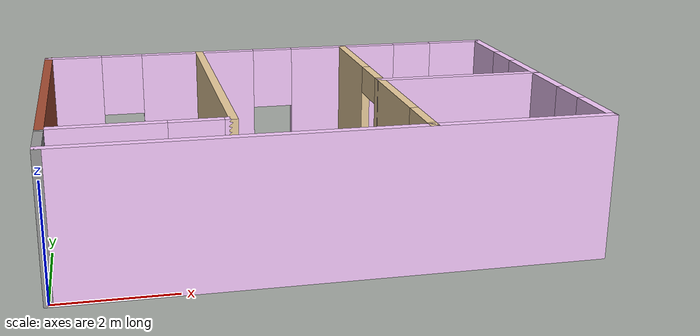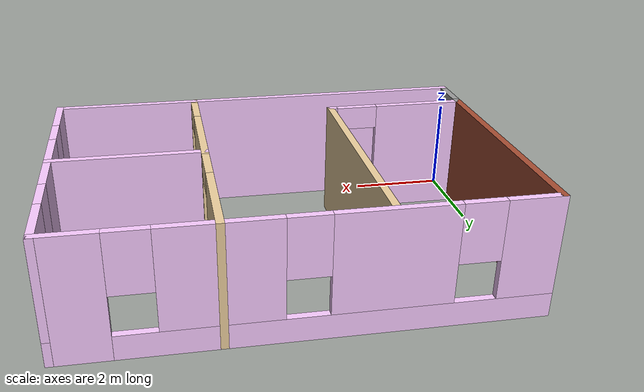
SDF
<?xml version='1.0'?>
<sdf version='1.6'>
  <model name='model'>
    <pose frame=''>4.5 3 0 0 -0 0</pose>
    <link name='Wall_33'>
      <collision name='Wall_33_Collision'>
        <geometry>
          <box>
            <size>5.15 0.15 2.5</size>
          </box>
        </geometry>
        <pose frame=''>0 0 1.25 0 -0 0</pose>
      </collision>
      <visual name='Wall_33_Visual'>
        <pose frame=''>0 0 1.25 0 -0 0</pose>
        <geometry>
          <box>
            <size>5.15 0.15 2.5</size>
          </box>
        </geometry>
        <material>
          <script>
            <uri>file://media/materials/scripts/gazebo.material</uri>
            <name>Gazebo/Bricks</name>
          </script>
          <ambient>0.0509804 0.968627 0.980392 1</ambient>
        </material>
        <meta>
          <layer>0</layer>
        </meta>
      </visual>
      <pose frame=''>-4.5 0.5 0 0 0 -1.5708</pose>
    </link>
    <link name='Wall_37'>
      <collision name='Wall_37_Collision'>
        <geometry>
          <box>
            <size>9.15 0.15 2.5</size>
          </box>
        </geometry>
        <pose frame=''>0 0 1.25 0 -0 0</pose>
      </collision>
      <visual name='Wall_37_Visual'>
        <pose frame=''>0 0 1.25 0 -0 0</pose>
        <geometry>
          <box>
            <size>9.15 0.15 2.5</size>
          </box>
        </geometry>
        <material>
          <script>
            <uri>file://media/materials/scripts/gazebo.material</uri>
            <name>Gazebo/Grey</name>
          </script>
          <ambient>0.972549 0.796078 1 1</ambient>
        </material>
        <meta>
          <layer>0</layer>
        </meta>
      </visual>
      <pose frame=''>0 -3 0 0 -0 3.14159</pose>
    </link>
    <link name='Wall_40'>
      <collision name='Wall_40_Collision'>
        <geometry>
          <box>
            <size>5.15 0.15 2.5</size>
          </box>
        </geometry>
        <pose frame=''>0 0 1.25 0 -0 0</pose>
      </collision>
      <visual name='Wall_40_Visual'>
        <pose frame=''>0 0 1.25 0 -0 0</pose>
        <geometry>
          <box>
            <size>5.15 0.15 2.5</size>
          </box>
        </geometry>
        <material>
          <script>
            <uri>file://media/materials/scripts/gazebo.material</uri>
            <name>Gazebo/Grey</name>
          </script>
          <ambient>0.921569 0.807843 0.615686 1</ambient>
        </material>
        <meta>
          <layer>0</layer>
        </meta>
      </visual>
      <pose frame=''>-1.5 0.5 0 0 -0 1.5708</pose>
    </link>
    <link name='Wall_42'>
      <pose frame=''>1.5 0 0 0 -0 1.5708</pose>
      <visual name='Wall_42_Visual_0'>
        <pose frame=''>-2.97485 0 1.25 0 -0 0</pose>
        <geometry>
          <box>
            <size>0.200301 0.15 2.5</size>
          </box>
        </geometry>
        <material>
          <script>
            <uri>file://media/materials/scripts/gazebo.material</uri>
            <name>Gazebo/Grey</name>
          </script>
          <ambient>0.921569 0.807843 0.615686 1</ambient>
        </material>
        <meta>
          <layer>0</layer>
        </meta>
      </visual>
      <collision name='Wall_42_Collision_0'>
        <geometry>
          <box>
            <size>0.200301 0.15 2.5</size>
          </box>
        </geometry>
        <pose frame=''>-2.97485 0 1.25 0 -0 0</pose>
      </collision>
      <visual name='Wall_42_Visual_1'>
        <pose frame=''>-0.912692 0 1.25 0 -0 0</pose>
        <geometry>
          <box>
            <size>2.12402 0.15 2.5</size>
          </box>
        </geometry>
        <material>
          <script>
            <uri>file://media/materials/scripts/gazebo.material</uri>
            <name>Gazebo/Grey</name>
          </script>
          <ambient>0.921569 0.807843 0.615686 1</ambient>
        </material>
        <meta>
          <layer>0</layer>
        </meta>
      </visual>
      <collision name='Wall_42_Collision_1'>
        <geometry>
          <box>
            <size>2.12402 0.15 2.5</size>
          </box>
        </geometry>
        <pose frame=''>-0.912692 0 1.25 0 -0 0</pose>
      </collision>
      <visual name='Wall_42_Visual_2'>
        <pose frame=''>2.06216 0 1.25 0 -0 0</pose>
        <geometry>
          <box>
            <size>2.02568 0.15 2.5</size>
          </box>
        </geometry>
        <material>
          <script>
            <uri>file://media/materials/scripts/gazebo.material</uri>
            <name>Gazebo/Grey</name>
          </script>
          <ambient>0.921569 0.807843 0.615686 1</ambient>
        </material>
        <meta>
          <layer>0</layer>
        </meta>
      </visual>
      <collision name='Wall_42_Collision_2'>
        <geometry>
          <box>
            <size>2.02568 0.15 2.5</size>
          </box>
        </geometry>
        <pose frame=''>2.06216 0 1.25 0 -0 0</pose>
      </collision>
      <visual name='Wall_42_Visual_3'>
        <pose frame=''>-2.4247 0 2.25 0 -0 0</pose>
        <geometry>
          <box>
            <size>0.9 0.15 0.5</size>
          </box>
        </geometry>
        <material>
          <script>
            <uri>file://media/materials/scripts/gazebo.material</uri>
            <name>Gazebo/Grey</name>
          </script>
          <ambient>0.921569 0.807843 0.615686 1</ambient>
        </material>
        <meta>
          <layer>0</layer>
        </meta>
      </visual>
      <collision name='Wall_42_Collision_3'>
        <geometry>
          <box>
            <size>0.9 0.15 0.5</size>
          </box>
        </geometry>
        <pose frame=''>-2.4247 0 2.25 0 -0 0</pose>
      </collision>
      <visual name='Wall_42_Visual_4'>
        <pose frame=''>0.599316 0 2.25 0 -0 0</pose>
        <geometry>
          <box>
            <size>0.9 0.15 0.5</size>
          </box>
        </geometry>
        <material>
          <script>
            <uri>file://media/materials/scripts/gazebo.material</uri>
            <name>Gazebo/Grey</name>
          </script>
          <ambient>0.921569 0.807843 0.615686 1</ambient>
        </material>
        <meta>
          <layer>0</layer>
        </meta>
      </visual>
      <collision name='Wall_42_Collision_4'>
        <geometry>
          <box>
            <size>0.9 0.15 0.5</size>
          </box>
        </geometry>
        <pose frame=''>0.599316 0 2.25 0 -0 0</pose>
      </collision>
    </link>
    <link name='Wall_44'>
      <collision name='Wall_44_Collision'>
        <geometry>
          <box>
            <size>3.15 0.15 2.5</size>
          </box>
        </geometry>
        <pose frame=''>0 0 1.25 0 -0 0</pose>
      </collision>
      <visual name='Wall_44_Visual'>
        <pose frame=''>0 0 1.25 0 -0 0</pose>
        <geometry>
          <box>
            <size>3.15 0.15 2.5</size>
          </box>
        </geometry>
        <material>
          <script>
            <uri>file://media/materials/scripts/gazebo.material</uri>
            <name>Gazebo/Grey</name>
          </script>
          <ambient>0.972549 0.796078 1 1</ambient>
        </material>
        <meta>
          <layer>0</layer>
        </meta>
      </visual>
      <pose frame=''>3 0 0 0 -0 0</pose>
    </link>
    <link name='Wall_46'>
      <pose frame=''>4.5 0 0 0 -0 1.5708</pose>
      <visual name='Wall_46_Visual_0'>
        <pose frame=''>-2.49226 0 1.25 0 -0 0</pose>
        <geometry>
          <box>
            <size>1.16548 0.15 2.5</size>
          </box>
        </geometry>
        <material>
          <script>
            <uri>file://media/materials/scripts/gazebo.material</uri>
            <name>Gazebo/Grey</name>
          </script>
          <ambient>0.972549 0.796078 1 1</ambient>
        </material>
        <meta>
          <layer>0</layer>
        </meta>
      </visual>
      <collision name='Wall_46_Collision_0'>
        <geometry>
          <box>
            <size>1.16548 0.15 2.5</size>
          </box>
        </geometry>
        <pose frame=''>-2.49226 0 1.25 0 -0 0</pose>
      </collision>
      <visual name='Wall_46_Visual_1'>
        <pose frame=''>0.582738 0 0.25 0 -0 0</pose>
        <geometry>
          <box>
            <size>4.98452 0.15 0.5</size>
          </box>
        </geometry>
        <material>
          <script>
            <uri>file://media/materials/scripts/gazebo.material</uri>
            <name>Gazebo/Grey</name>
          </script>
          <ambient>0.972549 0.796078 1 1</ambient>
        </material>
        <meta>
          <layer>0</layer>
        </meta>
      </visual>
      <collision name='Wall_46_Collision_1'>
        <geometry>
          <box>
            <size>4.98452 0.15 0.5</size>
          </box>
        </geometry>
        <pose frame=''>0.582738 0 0.25 0 -0 0</pose>
      </collision>
      <visual name='Wall_46_Visual_2'>
        <pose frame=''>-0.031774 0 1.5 0 -0 0</pose>
        <geometry>
          <box>
            <size>2.1555 0.15 2</size>
          </box>
        </geometry>
        <material>
          <script>
            <uri>file://media/materials/scripts/gazebo.material</uri>
            <name>Gazebo/Grey</name>
          </script>
          <ambient>0.972549 0.796078 1 1</ambient>
        </material>
        <meta>
          <layer>0</layer>
        </meta>
      </visual>
      <collision name='Wall_46_Collision_2'>
        <geometry>
          <box>
            <size>2.1555 0.15 2</size>
          </box>
        </geometry>
        <pose frame=''>-0.031774 0 1.5 0 -0 0</pose>
      </collision>
      <visual name='Wall_46_Visual_3'>
        <pose frame=''>2.46049 0 1.5 0 -0 0</pose>
        <geometry>
          <box>
            <size>1.22902 0.15 2</size>
          </box>
        </geometry>
        <material>
          <script>
            <uri>file://media/materials/scripts/gazebo.material</uri>
            <name>Gazebo/Grey</name>
          </script>
          <ambient>0.972549 0.796078 1 1</ambient>
        </material>
        <meta>
          <layer>0</layer>
        </meta>
      </visual>
      <collision name='Wall_46_Collision_3'>
        <geometry>
          <box>
            <size>1.22902 0.15 2</size>
          </box>
        </geometry>
        <pose frame=''>2.46049 0 1.5 0 -0 0</pose>
      </collision>
      <visual name='Wall_46_Visual_4'>
        <pose frame=''>-1.50952 0 1.9 0 -0 0</pose>
        <geometry>
          <box>
            <size>0.8 0.15 1.2</size>
          </box>
        </geometry>
        <material>
          <script>
            <uri>file://media/materials/scripts/gazebo.material</uri>
            <name>Gazebo/Grey</name>
          </script>
          <ambient>0.972549 0.796078 1 1</ambient>
        </material>
        <meta>
          <layer>0</layer>
        </meta>
      </visual>
      <collision name='Wall_46_Collision_4'>
        <geometry>
          <box>
            <size>0.8 0.15 1.2</size>
          </box>
        </geometry>
        <pose frame=''>-1.50952 0 1.9 0 -0 0</pose>
      </collision>
      <visual name='Wall_46_Visual_5'>
        <pose frame=''>1.44598 0 1.9 0 -0 0</pose>
        <geometry>
          <box>
            <size>0.8 0.15 1.2</size>
          </box>
        </geometry>
        <material>
          <script>
            <uri>file://media/materials/scripts/gazebo.material</uri>
            <name>Gazebo/Grey</name>
          </script>
          <ambient>0.972549 0.796078 1 1</ambient>
        </material>
        <meta>
          <layer>0</layer>
        </meta>
      </visual>
      <collision name='Wall_46_Collision_5'>
        <geometry>
          <box>
            <size>0.8 0.15 1.2</size>
          </box>
        </geometry>
        <pose frame=''>1.44598 0 1.9 0 -0 0</pose>
      </collision>
    </link>
    <link name='Wall_47'>
      <pose frame=''>0 3 0 0 -0 3.14159</pose>
      <visual name='Wall_47_Visual_0'>
        <pose frame=''>-3.99448 0 1.25 0 -0 0</pose>
        <geometry>
          <box>
            <size>1.16104 0.15 2.5</size>
          </box>
        </geometry>
        <material>
          <script>
            <uri>file://media/materials/scripts/gazebo.material</uri>
            <name>Gazebo/Grey</name>
          </script>
          <ambient>0.972549 0.796078 1 1</ambient>
        </material>
        <meta>
          <layer>0</layer>
        </meta>
      </visual>
      <collision name='Wall_47_Collision_0'>
        <geometry>
          <box>
            <size>1.16104 0.15 2.5</size>
          </box>
        </geometry>
        <pose frame=''>-3.99448 0 1.25 0 -0 0</pose>
      </collision>
      <visual name='Wall_47_Visual_1'>
        <pose frame=''>0.58052 0 0.25 0 -0 0</pose>
        <geometry>
          <box>
            <size>7.98896 0.15 0.5</size>
          </box>
        </geometry>
        <material>
          <script>
            <uri>file://media/materials/scripts/gazebo.material</uri>
            <name>Gazebo/Grey</name>
          </script>
          <ambient>0.972549 0.796078 1 1</ambient>
        </material>
        <meta>
          <layer>0</layer>
        </meta>
      </visual>
      <collision name='Wall_47_Collision_1'>
        <geometry>
          <box>
            <size>7.98896 0.15 0.5</size>
          </box>
        </geometry>
        <pose frame=''>0.58052 0 0.25 0 -0 0</pose>
      </collision>
      <visual name='Wall_47_Visual_2'>
        <pose frame=''>-1.50961 0 1.5 0 -0 0</pose>
        <geometry>
          <box>
            <size>2.2087 0.15 2</size>
          </box>
        </geometry>
        <material>
          <script>
            <uri>file://media/materials/scripts/gazebo.material</uri>
            <name>Gazebo/Grey</name>
          </script>
          <ambient>0.972549 0.796078 1 1</ambient>
        </material>
        <meta>
          <layer>0</layer>
        </meta>
      </visual>
      <collision name='Wall_47_Collision_2'>
        <geometry>
          <box>
            <size>2.2087 0.15 2</size>
          </box>
        </geometry>
        <pose frame=''>-1.50961 0 1.5 0 -0 0</pose>
      </collision>
      <visual name='Wall_47_Visual_3'>
        <pose frame=''>1.53224 0 1.5 0 -0 0</pose>
        <geometry>
          <box>
            <size>2.27501 0.15 2</size>
          </box>
        </geometry>
        <material>
          <script>
            <uri>file://media/materials/scripts/gazebo.material</uri>
            <name>Gazebo/Grey</name>
          </script>
          <ambient>0.972549 0.796078 1 1</ambient>
        </material>
        <meta>
          <layer>0</layer>
        </meta>
      </visual>
      <collision name='Wall_47_Collision_3'>
        <geometry>
          <box>
            <size>2.27501 0.15 2</size>
          </box>
        </geometry>
        <pose frame=''>1.53224 0 1.5 0 -0 0</pose>
      </collision>
      <visual name='Wall_47_Visual_4'>
        <pose frame=''>4.02237 0 1.5 0 -0 0</pose>
        <geometry>
          <box>
            <size>1.10526 0.15 2</size>
          </box>
        </geometry>
        <material>
          <script>
            <uri>file://media/materials/scripts/gazebo.material</uri>
            <name>Gazebo/Grey</name>
          </script>
          <ambient>0.972549 0.796078 1 1</ambient>
        </material>
        <meta>
          <layer>0</layer>
        </meta>
      </visual>
      <collision name='Wall_47_Collision_4'>
        <geometry>
          <box>
            <size>1.10526 0.15 2</size>
          </box>
        </geometry>
        <pose frame=''>4.02237 0 1.5 0 -0 0</pose>
      </collision>
      <visual name='Wall_47_Visual_5'>
        <pose frame=''>-3.01396 0 1.9 0 -0 0</pose>
        <geometry>
          <box>
            <size>0.8 0.15 1.2</size>
          </box>
        </geometry>
        <material>
          <script>
            <uri>file://media/materials/scripts/gazebo.material</uri>
            <name>Gazebo/Grey</name>
          </script>
          <ambient>0.972549 0.796078 1 1</ambient>
        </material>
        <meta>
          <layer>0</layer>
        </meta>
      </visual>
      <collision name='Wall_47_Collision_5'>
        <geometry>
          <box>
            <size>0.8 0.15 1.2</size>
          </box>
        </geometry>
        <pose frame=''>-3.01396 0 1.9 0 -0 0</pose>
      </collision>
      <visual name='Wall_47_Visual_6'>
        <pose frame=''>-0.005264 0 1.9 0 -0 0</pose>
        <geometry>
          <box>
            <size>0.8 0.15 1.2</size>
          </box>
        </geometry>
        <material>
          <script>
            <uri>file://media/materials/scripts/gazebo.material</uri>
            <name>Gazebo/Grey</name>
          </script>
          <ambient>0.972549 0.796078 1 1</ambient>
        </material>
        <meta>
          <layer>0</layer>
        </meta>
      </visual>
      <collision name='Wall_47_Collision_6'>
        <geometry>
          <box>
            <size>0.8 0.15 1.2</size>
          </box>
        </geometry>
        <pose frame=''>-0.005264 0 1.9 0 -0 0</pose>
      </collision>
      <visual name='Wall_47_Visual_7'>
        <pose frame=''>3.06974 0 1.9 0 -0 0</pose>
        <geometry>
          <box>
            <size>0.8 0.15 1.2</size>
          </box>
        </geometry>
        <material>
          <script>
            <uri>file://media/materials/scripts/gazebo.material</uri>
            <name>Gazebo/Grey</name>
          </script>
          <ambient>0.972549 0.796078 1 1</ambient>
        </material>
        <meta>
          <layer>0</layer>
        </meta>
      </visual>
      <collision name='Wall_47_Collision_7'>
        <geometry>
          <box>
            <size>0.8 0.15 1.2</size>
          </box>
        </geometry>
        <pose frame=''>3.06974 0 1.9 0 -0 0</pose>
      </collision>
    </link>
    <link name='Wall_49'>
      <pose frame=''>-3 -2 0 0 -0 0</pose>
      <visual name='Wall_49_Visual_0'>
        <pose frame=''>-0.5576 0 1.25 0 -0 0</pose>
        <geometry>
          <box>
            <size>2.0348 0.15 2.5</size>
          </box>
        </geometry>
        <material>
          <script>
            <uri>file://media/materials/scripts/gazebo.material</uri>
            <name>Gazebo/Grey</name>
          </script>
          <ambient>0.972549 0.796078 1 1</ambient>
        </material>
        <meta>
          <layer>0</layer>
        </meta>
      </visual>
      <collision name='Wall_49_Collision_0'>
        <geometry>
          <box>
            <size>2.0348 0.15 2.5</size>
          </box>
        </geometry>
        <pose frame=''>-0.5576 0 1.25 0 -0 0</pose>
      </collision>
      <visual name='Wall_49_Visual_1'>
        <pose frame=''>1.4674 0 1.25 0 -0 0</pose>
        <geometry>
          <box>
            <size>0.215199 0.15 2.5</size>
          </box>
        </geometry>
        <material>
          <script>
            <uri>file://media/materials/scripts/gazebo.material</uri>
            <name>Gazebo/Grey</name>
          </script>
          <ambient>0.972549 0.796078 1 1</ambient>
        </material>
        <meta>
          <layer>0</layer>
        </meta>
      </visual>
      <collision name='Wall_49_Collision_1'>
        <geometry>
          <box>
            <size>0.215199 0.15 2.5</size>
          </box>
        </geometry>
        <pose frame=''>1.4674 0 1.25 0 -0 0</pose>
      </collision>
      <visual name='Wall_49_Visual_2'>
        <pose frame=''>0.909801 0 2.25 0 -0 0</pose>
        <geometry>
          <box>
            <size>0.9 0.15 0.5</size>
          </box>
        </geometry>
        <material>
          <script>
            <uri>file://media/materials/scripts/gazebo.material</uri>
            <name>Gazebo/Grey</name>
          </script>
          <ambient>0.972549 0.796078 1 1</ambient>
        </material>
        <meta>
          <layer>0</layer>
        </meta>
      </visual>
      <collision name='Wall_49_Collision_2'>
        <geometry>
          <box>
            <size>0.9 0.15 0.5</size>
          </box>
        </geometry>
        <pose frame=''>0.909801 0 2.25 0 -0 0</pose>
      </collision>
    </link>
    <link name='Wall_51'>
      <pose frame=''>-4.5 -2.5 0 0 0 -1.5708</pose>
      <visual name='Wall_51_Visual_0'>
        <pose frame=''>-0.466254 0 1.25 0 -0 0</pose>
        <geometry>
          <box>
            <size>0.217492 0.15 2.5</size>
          </box>
        </geometry>
        <material>
          <script>
            <uri>file://media/materials/scripts/gazebo.material</uri>
            <name>Gazebo/Grey</name>
          </script>
          <ambient>1 1 1 1</ambient>
        </material>
        <meta>
          <layer>0</layer>
        </meta>
      </visual>
      <collision name='Wall_51_Collision_0'>
        <geometry>
          <box>
            <size>0.217492 0.15 2.5</size>
          </box>
        </geometry>
        <pose frame=''>-0.466254 0 1.25 0 -0 0</pose>
      </collision>
      <visual name='Wall_51_Visual_1'>
        <pose frame=''>0.558746 0 1.25 0 -0 0</pose>
        <geometry>
          <box>
            <size>0.032508 0.15 2.5</size>
          </box>
        </geometry>
        <material>
          <script>
            <uri>file://media/materials/scripts/gazebo.material</uri>
            <name>Gazebo/Grey</name>
          </script>
          <ambient>1 1 1 1</ambient>
        </material>
        <meta>
          <layer>0</layer>
        </meta>
      </visual>
      <collision name='Wall_51_Collision_1'>
        <geometry>
          <box>
            <size>0.032508 0.15 2.5</size>
          </box>
        </geometry>
        <pose frame=''>0.558746 0 1.25 0 -0 0</pose>
      </collision>
      <visual name='Wall_51_Visual_2'>
        <pose frame=''>0.092492 0 2.25 0 -0 0</pose>
        <geometry>
          <box>
            <size>0.9 0.15 0.5</size>
          </box>
        </geometry>
        <material>
          <script>
            <uri>file://media/materials/scripts/gazebo.material</uri>
            <name>Gazebo/Grey</name>
          </script>
          <ambient>1 1 1 1</ambient>
        </material>
        <meta>
          <layer>0</layer>
        </meta>
      </visual>
      <collision name='Wall_51_Collision_2'>
        <geometry>
          <box>
            <size>0.9 0.15 0.5</size>
          </box>
        </geometry>
        <pose frame=''>0.092492 0 2.25 0 -0 0</pose>
      </collision>
    </link>
    <static>1</static>
  </model>
</sdf>
